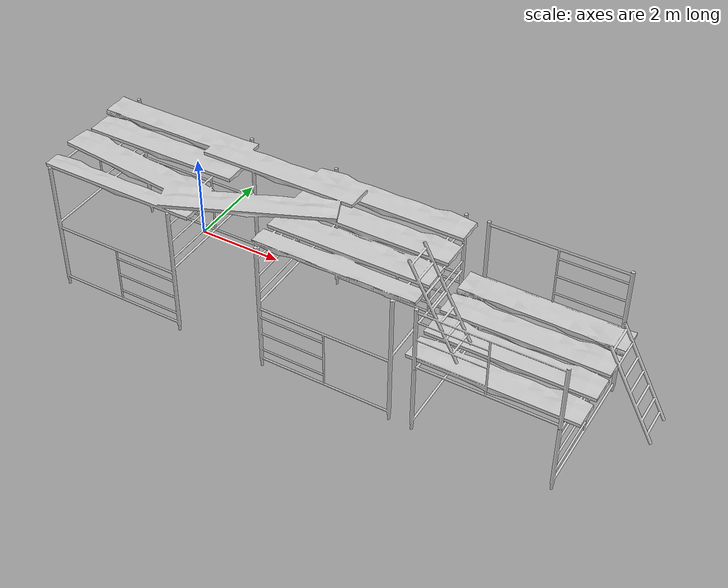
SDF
<?xml version="1.0" ?>
<sdf version="1.6">
  <model name="scaffolding_wide">
    <static>true</static>
    <link name="link">
      <collision name="collision">
        <pose>0 0 0 0 0 0</pose>
        <geometry>
          <mesh>
            <scale>1 1 1</scale>
            <uri>model://scaffolding_wide/meshes/scaffolding_wide.dae</uri>
          </mesh>
        </geometry>
      </collision>
      <visual name="visual">
        <pose>0 0 0 0 0 0</pose>
        <geometry>
          <mesh>
            <scale>1 1 1</scale>
	    <uri>model://scaffolding_wide/meshes/scaffolding_wide.dae</uri>
          </mesh>
        </geometry>
      </visual>
    </link>
  </model>
</sdf>
